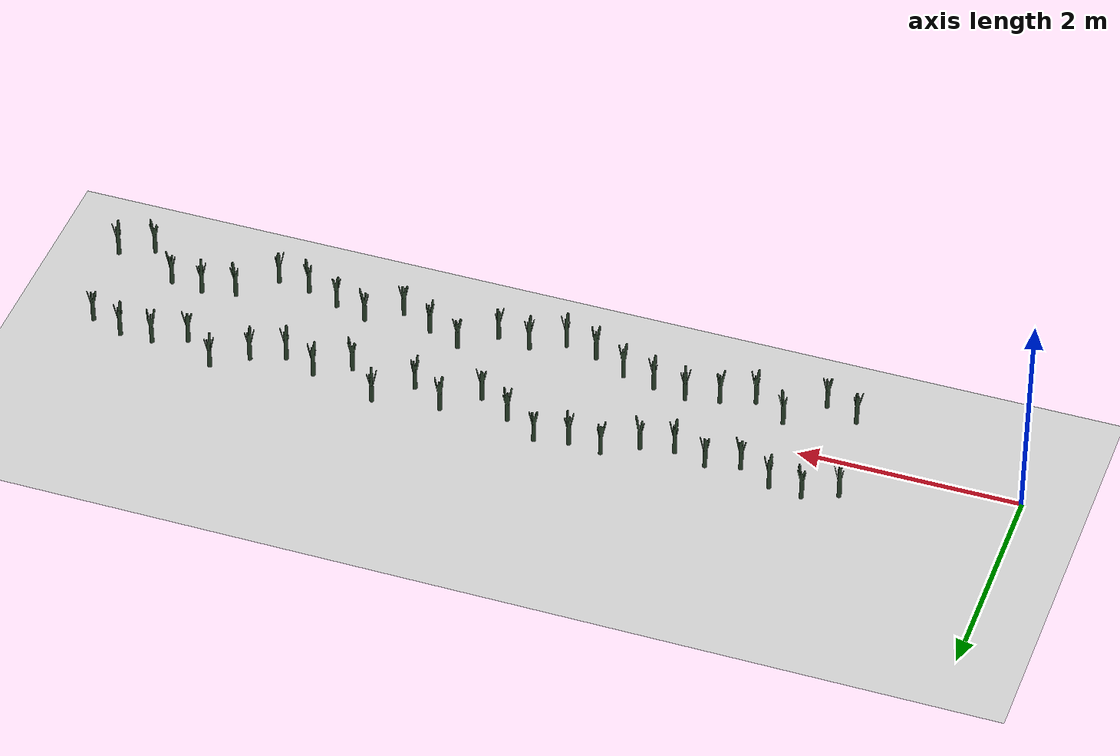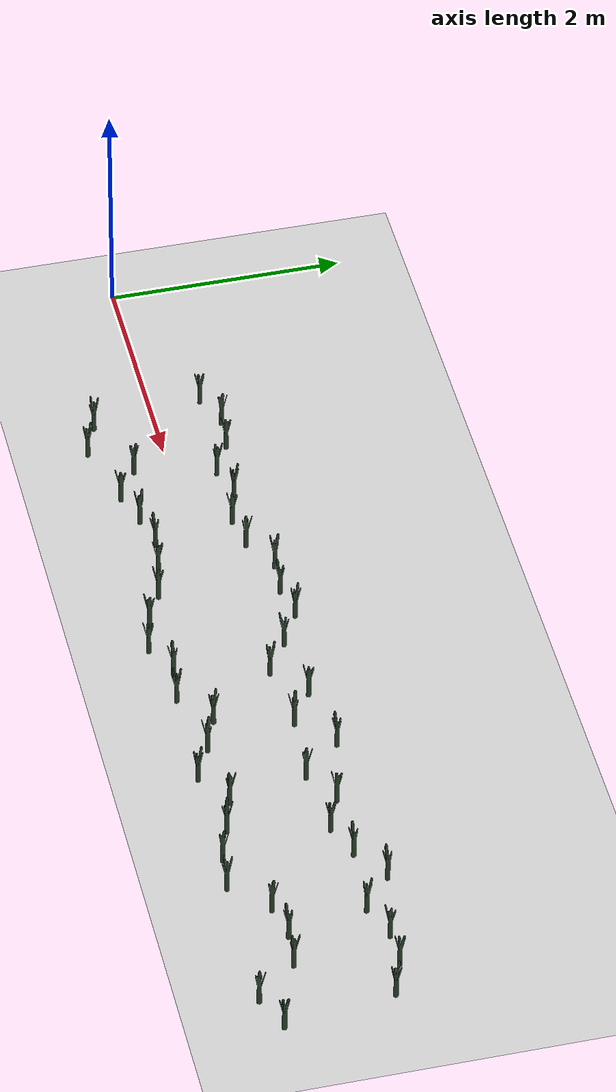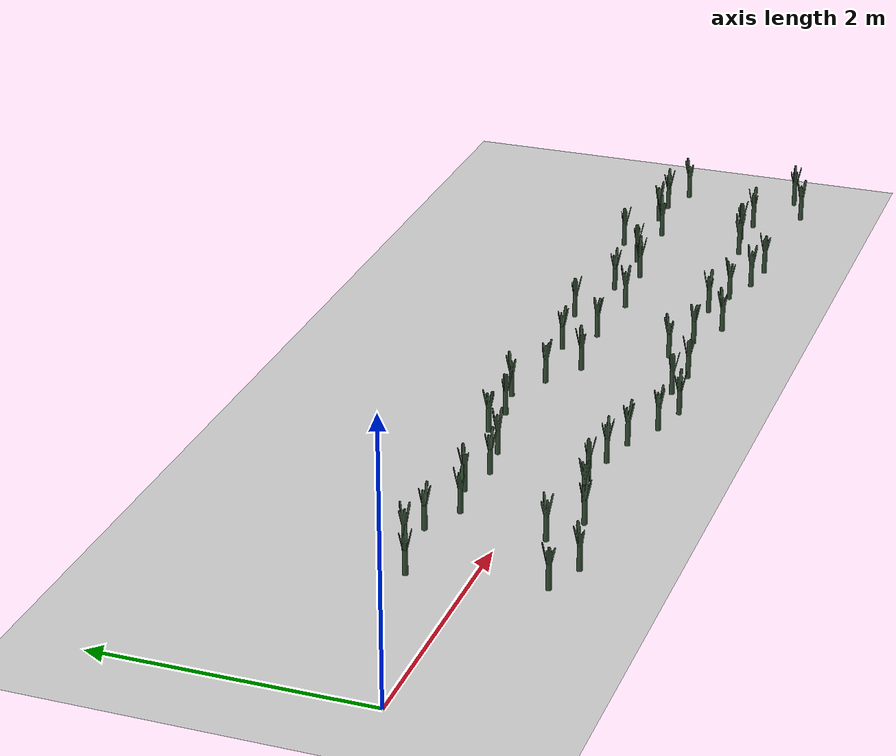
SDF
<sdf version="1.6">
 <world name="default">
  <light name="sun" type="directional">
   <pose>0 0 10 0 -0 0</pose>
   <diffuse>0.5 0.5 0.5 1</diffuse>
   <specular>0.1 0.1 0.1 1</specular>
   <attenuation>
    <range>1000</range>
    <constant>0.9</constant>
    <linear>0.01</linear>
    <quadratic>0.001</quadratic>
   </attenuation>
   <direction>0.9 0.5 -1</direction>
  </light>
  <scene><background>130 200 255 1</background><ambient>130 140 140 1</ambient></scene>
  <include><uri>model://dirt_plane</uri></include>
  <include>
   <uri>model://Leek</uri>
   <pose>1.500000 0.428359 0.15 0 0 -108.189138</pose>
   <static>0</static>
  </include>
  <include><uri>model://Leek</uri><pose>1.800000 0.548189 0.15 0 0 -82.322800</pose><static>0</static></include>
  <include><uri>model://Leek</uri><pose>2.100000 0.517758 0.15 0 0 105.164442</pose><static>0</static></include>
  <include><uri>model://Leek</uri><pose>2.400000 0.369686 0.15 0 0 62.825941</pose><static>0</static></include>
  <include><uri>model://Leek</uri><pose>2.700000 0.446605 0.15 0 0 -5.700820</pose><static>0</static></include>
  <include><uri>model://Leek</uri><pose>3.000000 0.362863 0.15 0 0 -33.059709</pose><static>0</static></include>
  <include><uri>model://Leek</uri><pose>3.300000 0.409775 0.15 0 0 -56.880764</pose><static>0</static></include>
  <include><uri>model://Leek</uri><pose>3.600000 0.583539 0.15 0 0 -47.938701</pose><static>0</static></include>
  <include><uri>model://Leek</uri><pose>3.900000 0.557392 0.15 0 0 -15.256252</pose><static>0</static></include>
  <include><uri>model://Leek</uri><pose>4.200000 0.611658 0.15 0 0 25.952453</pose><static>0</static></include>
  <include>
   <uri>model://Leek</uri>
   <pose>4.500000 0.445421 0.15 0 0 -165.683235</pose>
   <static>0</static>
  </include>
  <include><uri>model://Leek</uri><pose>4.800000 0.258494 0.15 0 0 -37.246459</pose><static>0</static></include>
  <include>
   <uri>model://Leek</uri>
   <pose>5.100000 0.505872 0.15 0 0 -146.303509</pose>
   <static>0</static>
  </include>
  <include><uri>model://Leek</uri><pose>5.400000 0.316668 0.15 0 0 71.902371</pose><static>0</static></include>
  <include><uri>model://Leek</uri><pose>5.700000 0.593965 0.15 0 0 -84.548895</pose><static>0</static></include>
  <include><uri>model://Leek</uri><pose>6.000000 0.266997 0.15 0 0 43.542016</pose><static>0</static></include>
  <include>
   <uri>model://Leek</uri>
   <pose>6.300000 0.445368 0.15 0 0 -177.562457</pose>
   <static>0</static>
  </include>
  <include><uri>model://Leek</uri><pose>6.600000 0.322332 0.15 0 0 -76.780886</pose><static>0</static></include>
  <include>
   <uri>model://Leek</uri>
   <pose>6.900000 0.434740 0.15 0 0 -134.956260</pose>
   <static>0</static>
  </include>
  <include><uri>model://Leek</uri><pose>7.200000 0.632992 0.15 0 0 179.228691</pose><static>0</static></include>
  <include><uri>model://Leek</uri><pose>7.500000 0.390133 0.15 0 0 170.085025</pose><static>0</static></include>
  <include>
   <uri>model://Leek</uri>
   <pose>7.800000 0.502483 0.15 0 0 -115.147228</pose>
   <static>0</static>
  </include>
  <include><uri>model://Leek</uri><pose>8.100000 0.502859 0.15 0 0 117.925046</pose><static>0</static></include>
  <include><uri>model://Leek</uri><pose>8.400000 0.396345 0.15 0 0 32.216710</pose><static>0</static></include>
  <include><uri>model://Leek</uri><pose>1.630039 -0.515204 0.15 0 0 64.654108</pose><static>0</static></include>
  <include><uri>model://Leek</uri><pose>1.930039 -0.630988 0.15 0 0 44.656175</pose><static>0</static></include>
  <include>
   <uri>model://Leek</uri>
   <pose>2.230039 -0.301839 0.15 0 0 162.445001</pose>
   <static>0</static>
  </include>
  <include>
   <uri>model://Leek</uri>
   <pose>2.530039 -0.477039 0.15 0 0 -14.318621</pose>
   <static>0</static>
  </include>
  <include>
   <uri>model://Leek</uri>
   <pose>2.830039 -0.381871 0.15 0 0 128.133924</pose>
   <static>0</static>
  </include>
  <include><uri>model://Leek</uri><pose>3.130039 -0.317695 0.15 0 0 28.497600</pose><static>0</static></include>
  <include>
   <uri>model://Leek</uri>
   <pose>3.430039 -0.360740 0.15 0 0 -58.073432</pose>
   <static>0</static>
  </include>
  <include>
   <uri>model://Leek</uri>
   <pose>3.730039 -0.424841 0.15 0 0 -45.836341</pose>
   <static>0</static>
  </include>
  <include>
   <uri>model://Leek</uri>
   <pose>4.030039 -0.566528 0.15 0 0 -14.560172</pose>
   <static>0</static>
  </include>
  <include>
   <uri>model://Leek</uri>
   <pose>4.330039 -0.640593 0.15 0 0 -164.844648</pose>
   <static>0</static>
  </include>
  <include>
   <uri>model://Leek</uri>
   <pose>4.630039 -0.500849 0.15 0 0 -141.349286</pose>
   <static>0</static>
  </include>
  <include>
   <uri>model://Leek</uri>
   <pose>4.930039 -0.542993 0.15 0 0 -85.975664</pose>
   <static>0</static>
  </include>
  <include>
   <uri>model://Leek</uri>
   <pose>5.230039 -0.309139 0.15 0 0 -168.792291</pose>
   <static>0</static>
  </include>
  <include>
   <uri>model://Leek</uri>
   <pose>5.530039 -0.423547 0.15 0 0 109.539402</pose>
   <static>0</static>
  </include>
  <include>
   <uri>model://Leek</uri>
   <pose>5.830039 -0.572124 0.15 0 0 -24.455798</pose>
   <static>0</static>
  </include>
  <include><uri>model://Leek</uri><pose>6.130039 -0.383338 0.15 0 0 31.275168</pose><static>0</static></include>
  <include>
   <uri>model://Leek</uri>
   <pose>6.430039 -0.476151 0.15 0 0 -17.567591</pose>
   <static>0</static>
  </include>
  <include>
   <uri>model://Leek</uri>
   <pose>6.730039 -0.577504 0.15 0 0 137.562844</pose>
   <static>0</static>
  </include>
  <include>
   <uri>model://Leek</uri>
   <pose>7.030039 -0.614361 0.15 0 0 -92.431055</pose>
   <static>0</static>
  </include>
  <include><uri>model://Leek</uri><pose>7.330039 -0.324194 0.15 0 0 80.965431</pose><static>0</static></include>
  <include>
   <uri>model://Leek</uri>
   <pose>7.630039 -0.263435 0.15 0 0 166.824714</pose>
   <static>0</static>
  </include>
  <include>
   <uri>model://Leek</uri>
   <pose>7.930039 -0.295935 0.15 0 0 125.654024</pose>
   <static>0</static>
  </include>
  <include><uri>model://Leek</uri><pose>8.230039 -0.638860 0.15 0 0 43.548995</pose><static>0</static></include>
  <include>
   <uri>model://Leek</uri>
   <pose>8.530039 -0.511483 0.15 0 0 174.585708</pose>
   <static>0</static>
  </include>
 </world>
</sdf>

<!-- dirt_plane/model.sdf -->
<sdf version="1.4">
<model name="dirt_plane">
  <static>true</static>
    <link name="link">
      <collision name="collision">
        <geometry>
          <plane>
            <normal>0 0 1</normal>
            <size>100 100</size>
          </plane>
        </geometry>
        <surface>
          <friction>
            <ode>
              <mu>100</mu>
              <mu2>50</mu2>
            </ode>
          </friction>
        </surface>
      </collision>
      <visual name="visual">
        <cast_shadows>false</cast_shadows>
        <geometry>
          <plane>
            <normal>0 0 1</normal>
            <size>100 100</size>
          </plane>
        </geometry>
        <material>
          <script>
            <uri>model://ground_plane/materials/scripts/my_ground_plane.material</uri>
            <uri>model://ground_plane/materials/textures</uri>
            <name>my_ground_plane/Dirt</name>
          </script>
        </material>
      </visual>
    </link>
  </model>
</sdf>

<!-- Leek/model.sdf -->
<sdf version='1.6'>
  <model name='Leek'>
    <link name='link'>
      <pose frame=''>0 0 0 0 -0 0</pose>
      <inertial>
        <mass>1</mass>
        <inertia>
          <ixx>0.145833</ixx>
          <ixy>0</ixy>
          <ixz>0</ixz>
          <iyy>0.145833</iyy>
          <iyz>0</iyz>
          <izz>0.125</izz>
        </inertia>
        <pose frame=''>0 0 0 0 -0 0</pose>
      </inertial>
      <self_collide>0</self_collide>
      <kinematic>0</kinematic>
      <gravity>1</gravity>
      <visual name='visual'>
        <geometry>
          <mesh>
            <uri>model://Leek/Poireau.dae</uri>
            <scale>1 1 1</scale>
          </mesh>
        </geometry>
        <material>
          <script>
            <name>Gazebo/Grey</name>
            <uri>file://media/materials/scripts/gazebo.material</uri>
          </script>
          <ambient>0.3 0.7 0.4 0</ambient>
          <diffuse>0.2 0.3 0.2 0</diffuse>
          <specular>0 0 0 1</specular>
          <emissive>0 0 0 1</emissive>
          <shader type='vertex'>
            <normal_map>__default__</normal_map>
          </shader>
        </material>
        <pose frame=''>0 0 -0.08 0 -0 0</pose>
        <cast_shadows>1</cast_shadows>
        <transparency>0</transparency>
      </visual>
      <collision name='collision'>
        <laser_retro>0</laser_retro>
        <max_contacts>10</max_contacts>
        <pose frame=''>0 0 0 0 -0 0</pose>
        <geometry>
          <cylinder>
            <radius>0.02</radius>
            <length>0.25</length>
          </cylinder>
        </geometry>
        <surface>
          <friction>
            <ode>
              <mu>1</mu>
              <mu2>1</mu2>
              <fdir1>0 0 0</fdir1>
              <slip1>0</slip1>
              <slip2>0</slip2>
            </ode>
            <torsional>
              <coefficient>1</coefficient>
              <patch_radius>0</patch_radius>
              <surface_radius>0</surface_radius>
              <use_patch_radius>1</use_patch_radius>
              <ode>
                <slip>0</slip>
              </ode>
            </torsional>
          </friction>
          <bounce>
            <restitution_coefficient>0</restitution_coefficient>
            <threshold>1e+06</threshold>
          </bounce>
          <contact>
            <collide_without_contact>0</collide_without_contact>
            <collide_without_contact_bitmask>1</collide_without_contact_bitmask>
            <collide_bitmask>1</collide_bitmask>
            <ode>
              <soft_cfm>0</soft_cfm>
              <soft_erp>0.2</soft_erp>
              <kp>1e+13</kp>
              <kd>1</kd>
              <max_vel>0.01</max_vel>
              <min_depth>0</min_depth>
            </ode>
            <bullet>
              <split_impulse>1</split_impulse>
              <split_impulse_penetration_threshold>-0.01</split_impulse_penetration_threshold>
              <soft_cfm>0</soft_cfm>
              <soft_erp>0.2</soft_erp>
              <kp>1e+13</kp>
              <kd>1</kd>
            </bullet>
          </contact>
        </surface>
      </collision>
    </link>
    <static>0</static>
    <allow_auto_disable>1</allow_auto_disable>
  </model>
</sdf>
